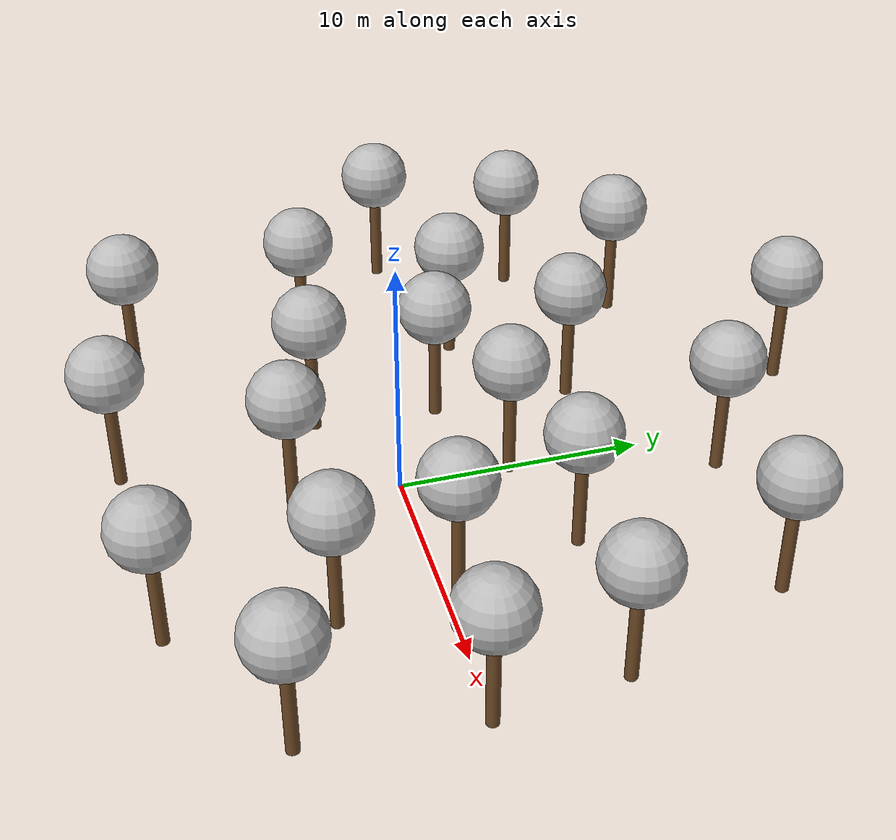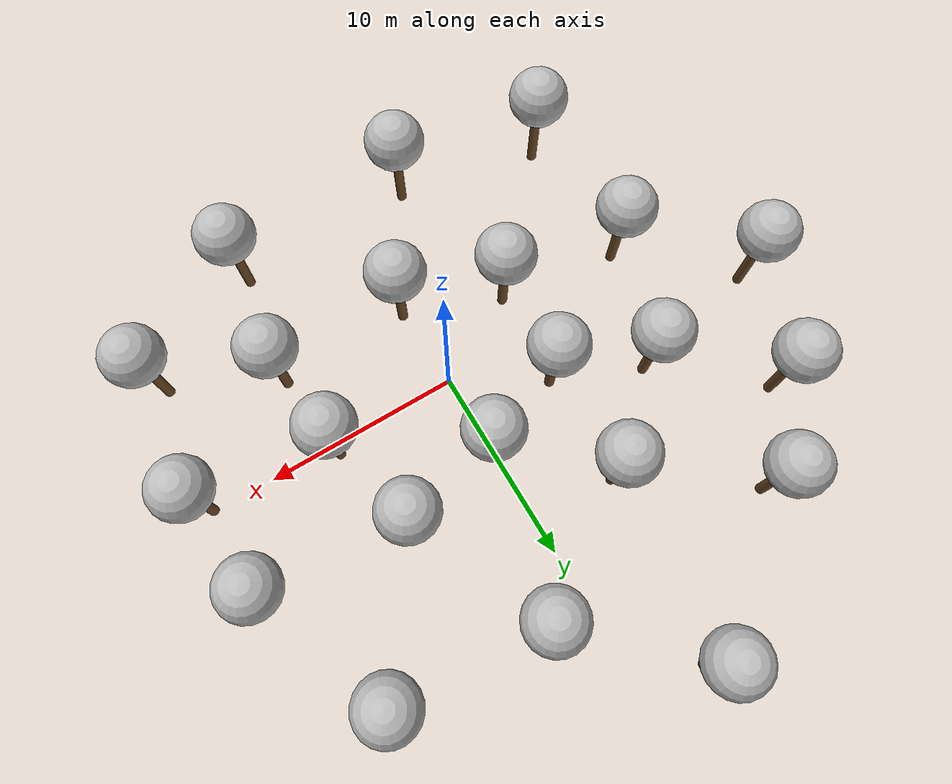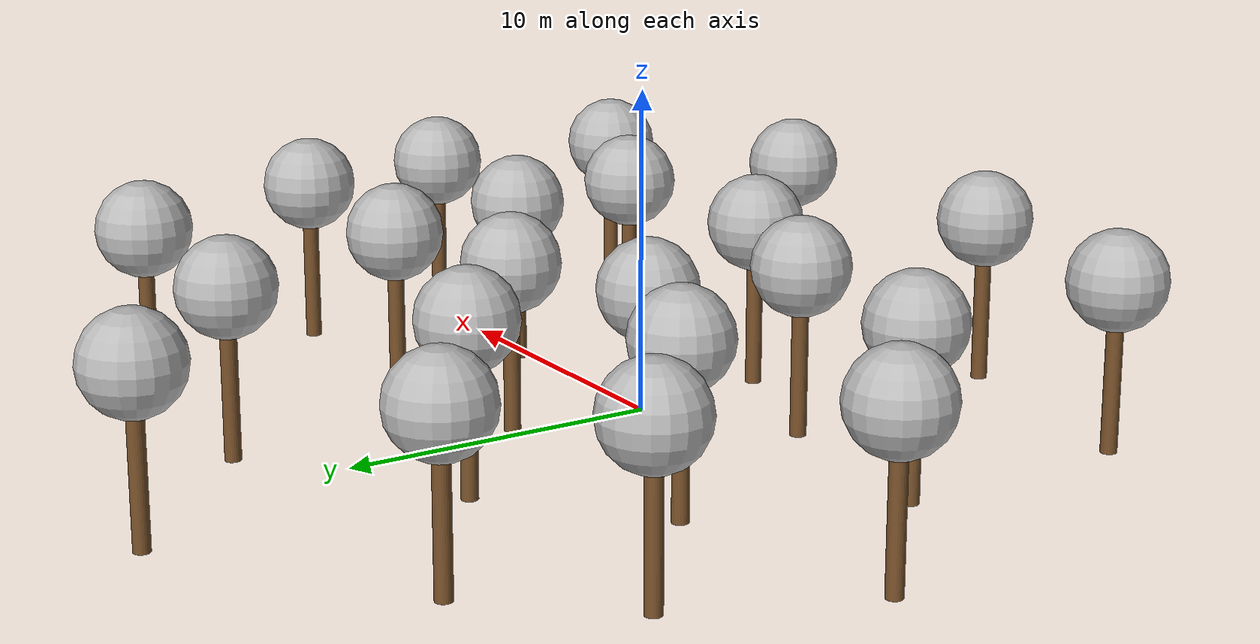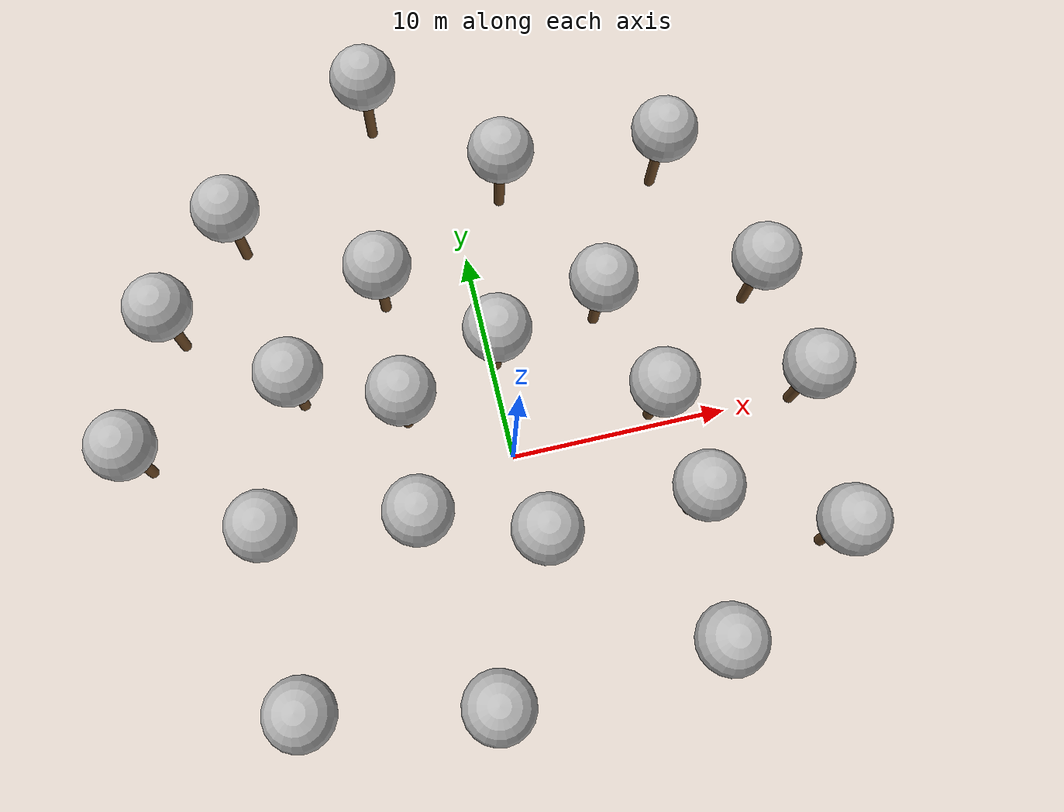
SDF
<sdf version="1.7">
 <world name="default">
  <spherical_coordinates>
   <surface_model>EARTH_WGS84</surface_model>
   <latitude_deg>47.3977</latitude_deg>
   <longitude_deg>8.54559</longitude_deg>
   <elevation>0</elevation>
   <heading_deg>0</heading_deg>
  </spherical_coordinates>
  <physics name="default_physics" default="0" type="ode">
   <ode>
    <solver>
     <type>quick</type>
     <iters>10</iters>
     <sor>1.3</sor>
     <use_dynamic_moi_rescaling>0</use_dynamic_moi_rescaling>
    </solver>
    <constraints>
     <cfm>0</cfm>
     <erp>0.2</erp>
     <contact_max_correcting_vel>1000</contact_max_correcting_vel>
     <contact_surface_layer>0.001</contact_surface_layer>
    </constraints>
   </ode>
   <max_step_size>0.004</max_step_size>
   <real_time_factor>1</real_time_factor>
   <real_time_update_rate>250</real_time_update_rate>
  </physics>
  <scene><shadows>0</shadows><ambient>0.4 0.4 0.4 1</ambient><background>0.7 0.7 0.7 1</background></scene>
  <light name="sun" type="directional">
   <pose>0 0 1000 0.4 0.2 0</pose>
   <diffuse>1 1 1 1</diffuse>
   <specular>0.6 0.6 0.6 1</specular>
   <direction>0.1 0.1 -0.9</direction>
   <attenuation>
    <range>20</range>
    <constant>0.5</constant>
    <linear>0.01</linear>
    <quadratic>0.001</quadratic>
   </attenuation>
   <spot><inner_angle>0</inner_angle><outer_angle>0</outer_angle><falloff>0</falloff></spot>
  </light>
  <gravity>0 0 -9.8066</gravity>
  <magnetic_field>6e-06 2.3e-05 -4.2e-05</magnetic_field>
  <atmosphere type="adiabatic"/>
  <model name="tree_simple">
   <static>1</static>
   <link name="link">
    <pose>0 0 0.1 0 -0 0</pose>
    <inertial>
     <mass>666</mass>
     <inertia>
      <ixx>0.0861167</ixx>
      <ixy>0</ixy>
      <ixz>0</ixz>
      <iyy>0.0861167</iyy>
      <iyz>0</iyz>
      <izz>0.0861167</izz>
     </inertia>
    </inertial>
    <collision name="collision_trunk">
     <pose>0 0 2 0 -0 0</pose>
     <geometry><cylinder><radius>0.25</radius><length>4</length></cylinder></geometry>
     <surface>
      <contact>
       <poissons_ratio>0.347</poissons_ratio>
       <elastic_modulus>8.8e+09</elastic_modulus>
       <ode><kp>100000</kp><kd>100</kd><max_vel>100</max_vel><min_depth>0.001</min_depth></ode>
      </contact>
      <friction>
       <torsional>
        <coefficient>1</coefficient>
        <use_patch_radius>0</use_patch_radius>
        <surface_radius>0.01</surface_radius>
       </torsional>
      </friction>
     </surface>
    </collision>
    <collision name="collision_treetop">
     <pose>0 0 5.2 0 -0 0</pose>
     <geometry><sphere><radius>1.5</radius></sphere></geometry>
     <surface>
      <contact>
       <poissons_ratio>0.347</poissons_ratio>
       <elastic_modulus>8.8e+09</elastic_modulus>
       <ode><kp>100000</kp><kd>100</kd><max_vel>100</max_vel><min_depth>0.001</min_depth></ode>
      </contact>
      <friction>
       <torsional>
        <coefficient>1</coefficient>
        <use_patch_radius>0</use_patch_radius>
        <surface_radius>0.01</surface_radius>
       </torsional>
      </friction>
     </surface>
    </collision>
    <visual name="trunk">
     <pose>0 0 2 0 -0 0</pose>
     <geometry><cylinder><radius>0.25</radius><length>4</length></cylinder></geometry>
     <material>
      <script>
       <uri>model://tree_simple/scripts</uri>
       <uri>model://tree_simple/materials/textures</uri>
       <name>TreeSimple/Trunk</name>
      </script>
     </material>
    </visual>
    <visual name="treetop">
     <pose>0 0 5.2 0 -0 0</pose>
     <geometry><sphere><radius>1.5</radius></sphere></geometry>
     <material>
      <script>
       <uri>model://tree_simple/scripts</uri>
       <uri>model://tree_simple/materials/textures</uri>
       <name>TreeSimple/Treetop</name>
      </script>
     </material>
    </visual>
   </link>
   <pose>-4.70426 -2.50744 0 0 -0 0</pose>
  </model>
  <model name="tree_simple_0">
   <static>1</static>
   <link name="link">
    <pose>0 0 0.1 0 -0 0</pose>
    <inertial>
     <mass>666</mass>
     <inertia>
      <ixx>0.0861167</ixx>
      <ixy>0</ixy>
      <ixz>0</ixz>
      <iyy>0.0861167</iyy>
      <iyz>0</iyz>
      <izz>0.0861167</izz>
     </inertia>
    </inertial>
    <collision name="collision_trunk">
     <pose>0 0 2 0 -0 0</pose>
     <geometry><cylinder><radius>0.25</radius><length>4</length></cylinder></geometry>
     <surface>
      <contact>
       <poissons_ratio>0.347</poissons_ratio>
       <elastic_modulus>8.8e+09</elastic_modulus>
       <ode><kp>100000</kp><kd>100</kd><max_vel>100</max_vel><min_depth>0.001</min_depth></ode>
      </contact>
      <friction>
       <torsional>
        <coefficient>1</coefficient>
        <use_patch_radius>0</use_patch_radius>
        <surface_radius>0.01</surface_radius>
       </torsional>
      </friction>
     </surface>
    </collision>
    <collision name="collision_treetop">
     <pose>0 0 5.2 0 -0 0</pose>
     <geometry><sphere><radius>1.5</radius></sphere></geometry>
     <surface>
      <contact>
       <poissons_ratio>0.347</poissons_ratio>
       <elastic_modulus>8.8e+09</elastic_modulus>
       <ode><kp>100000</kp><kd>100</kd><max_vel>100</max_vel><min_depth>0.001</min_depth></ode>
      </contact>
      <friction>
       <torsional>
        <coefficient>1</coefficient>
        <use_patch_radius>0</use_patch_radius>
        <surface_radius>0.01</surface_radius>
       </torsional>
      </friction>
     </surface>
    </collision>
    <visual name="trunk">
     <pose>0 0 2 0 -0 0</pose>
     <geometry><cylinder><radius>0.25</radius><length>4</length></cylinder></geometry>
     <material>
      <script>
       <uri>model://tree_simple/scripts</uri>
       <uri>model://tree_simple/materials/textures</uri>
       <name>TreeSimple/Trunk</name>
      </script>
     </material>
    </visual>
    <visual name="treetop">
     <pose>0 0 5.2 0 -0 0</pose>
     <geometry><sphere><radius>1.5</radius></sphere></geometry>
     <material>
      <script>
       <uri>model://tree_simple/scripts</uri>
       <uri>model://tree_simple/materials/textures</uri>
       <name>TreeSimple/Treetop</name>
      </script>
     </material>
    </visual>
   </link>
   <pose>0.249496 -4.3834 0 0 -0 0</pose>
  </model>
  <model name="tree_simple_1">
   <static>1</static>
   <link name="link">
    <pose>0 0 0.1 0 -0 0</pose>
    <inertial>
     <mass>666</mass>
     <inertia>
      <ixx>0.0861167</ixx>
      <ixy>0</ixy>
      <ixz>0</ixz>
      <iyy>0.0861167</iyy>
      <iyz>0</iyz>
      <izz>0.0861167</izz>
     </inertia>
    </inertial>
    <collision name="collision_trunk">
     <pose>0 0 2 0 -0 0</pose>
     <geometry><cylinder><radius>0.25</radius><length>4</length></cylinder></geometry>
     <surface>
      <contact>
       <poissons_ratio>0.347</poissons_ratio>
       <elastic_modulus>8.8e+09</elastic_modulus>
       <ode><kp>100000</kp><kd>100</kd><max_vel>100</max_vel><min_depth>0.001</min_depth></ode>
      </contact>
      <friction>
       <torsional>
        <coefficient>1</coefficient>
        <use_patch_radius>0</use_patch_radius>
        <surface_radius>0.01</surface_radius>
       </torsional>
      </friction>
     </surface>
    </collision>
    <collision name="collision_treetop">
     <pose>0 0 5.2 0 -0 0</pose>
     <geometry><sphere><radius>1.5</radius></sphere></geometry>
     <surface>
      <contact>
       <poissons_ratio>0.347</poissons_ratio>
       <elastic_modulus>8.8e+09</elastic_modulus>
       <ode><kp>100000</kp><kd>100</kd><max_vel>100</max_vel><min_depth>0.001</min_depth></ode>
      </contact>
      <friction>
       <torsional>
        <coefficient>1</coefficient>
        <use_patch_radius>0</use_patch_radius>
        <surface_radius>0.01</surface_radius>
       </torsional>
      </friction>
     </surface>
    </collision>
    <visual name="trunk">
     <pose>0 0 2 0 -0 0</pose>
     <geometry><cylinder><radius>0.25</radius><length>4</length></cylinder></geometry>
     <material>
      <script>
       <uri>model://tree_simple/scripts</uri>
       <uri>model://tree_simple/materials/textures</uri>
       <name>TreeSimple/Trunk</name>
      </script>
     </material>
    </visual>
    <visual name="treetop">
     <pose>0 0 5.2 0 -0 0</pose>
     <geometry><sphere><radius>1.5</radius></sphere></geometry>
     <material>
      <script>
       <uri>model://tree_simple/scripts</uri>
       <uri>model://tree_simple/materials/textures</uri>
       <name>TreeSimple/Treetop</name>
      </script>
     </material>
    </visual>
   </link>
   <pose>6.52123 0.547415 0 0 -0 0</pose>
  </model>
  <model name="tree_simple_2">
   <static>1</static>
   <link name="link">
    <pose>0 0 0.1 0 -0 0</pose>
    <inertial>
     <mass>666</mass>
     <inertia>
      <ixx>0.0861167</ixx>
      <ixy>0</ixy>
      <ixz>0</ixz>
      <iyy>0.0861167</iyy>
      <iyz>0</iyz>
      <izz>0.0861167</izz>
     </inertia>
    </inertial>
    <collision name="collision_trunk">
     <pose>0 0 2 0 -0 0</pose>
     <geometry><cylinder><radius>0.25</radius><length>4</length></cylinder></geometry>
     <surface>
      <contact>
       <poissons_ratio>0.347</poissons_ratio>
       <elastic_modulus>8.8e+09</elastic_modulus>
       <ode><kp>100000</kp><kd>100</kd><max_vel>100</max_vel><min_depth>0.001</min_depth></ode>
      </contact>
      <friction>
       <torsional>
        <coefficient>1</coefficient>
        <use_patch_radius>0</use_patch_radius>
        <surface_radius>0.01</surface_radius>
       </torsional>
      </friction>
     </surface>
    </collision>
    <collision name="collision_treetop">
     <pose>0 0 5.2 0 -0 0</pose>
     <geometry><sphere><radius>1.5</radius></sphere></geometry>
     <surface>
      <contact>
       <poissons_ratio>0.347</poissons_ratio>
       <elastic_modulus>8.8e+09</elastic_modulus>
       <ode><kp>100000</kp><kd>100</kd><max_vel>100</max_vel><min_depth>0.001</min_depth></ode>
      </contact>
      <friction>
       <torsional>
        <coefficient>1</coefficient>
        <use_patch_radius>0</use_patch_radius>
        <surface_radius>0.01</surface_radius>
       </torsional>
      </friction>
     </surface>
    </collision>
    <visual name="trunk">
     <pose>0 0 2 0 -0 0</pose>
     <geometry><cylinder><radius>0.25</radius><length>4</length></cylinder></geometry>
     <material>
      <script>
       <uri>model://tree_simple/scripts</uri>
       <uri>model://tree_simple/materials/textures</uri>
       <name>TreeSimple/Trunk</name>
      </script>
     </material>
    </visual>
    <visual name="treetop">
     <pose>0 0 5.2 0 -0 0</pose>
     <geometry><sphere><radius>1.5</radius></sphere></geometry>
     <material>
      <script>
       <uri>model://tree_simple/scripts</uri>
       <uri>model://tree_simple/materials/textures</uri>
       <name>TreeSimple/Treetop</name>
      </script>
     </material>
    </visual>
   </link>
   <pose>-8.86186 4.47994 0 0 -0 0</pose>
  </model>
  <model name="tree_simple_3">
   <static>1</static>
   <link name="link">
    <pose>0 0 0.1 0 -0 0</pose>
    <inertial>
     <mass>666</mass>
     <inertia>
      <ixx>0.0861167</ixx>
      <ixy>0</ixy>
      <ixz>0</ixz>
      <iyy>0.0861167</iyy>
      <iyz>0</iyz>
      <izz>0.0861167</izz>
     </inertia>
    </inertial>
    <collision name="collision_trunk">
     <pose>0 0 2 0 -0 0</pose>
     <geometry><cylinder><radius>0.25</radius><length>4</length></cylinder></geometry>
     <surface>
      <contact>
       <poissons_ratio>0.347</poissons_ratio>
       <elastic_modulus>8.8e+09</elastic_modulus>
       <ode><kp>100000</kp><kd>100</kd><max_vel>100</max_vel><min_depth>0.001</min_depth></ode>
      </contact>
      <friction>
       <torsional>
        <coefficient>1</coefficient>
        <use_patch_radius>0</use_patch_radius>
        <surface_radius>0.01</surface_radius>
       </torsional>
      </friction>
     </surface>
    </collision>
    <collision name="collision_treetop">
     <pose>0 0 5.2 0 -0 0</pose>
     <geometry><sphere><radius>1.5</radius></sphere></geometry>
     <surface>
      <contact>
       <poissons_ratio>0.347</poissons_ratio>
       <elastic_modulus>8.8e+09</elastic_modulus>
       <ode><kp>100000</kp><kd>100</kd><max_vel>100</max_vel><min_depth>0.001</min_depth></ode>
      </contact>
      <friction>
       <torsional>
        <coefficient>1</coefficient>
        <use_patch_radius>0</use_patch_radius>
        <surface_radius>0.01</surface_radius>
       </torsional>
      </friction>
     </surface>
    </collision>
    <visual name="trunk">
     <pose>0 0 2 0 -0 0</pose>
     <geometry><cylinder><radius>0.25</radius><length>4</length></cylinder></geometry>
     <material>
      <script>
       <uri>model://tree_simple/scripts</uri>
       <uri>model://tree_simple/materials/textures</uri>
       <name>TreeSimple/Trunk</name>
      </script>
     </material>
    </visual>
    <visual name="treetop">
     <pose>0 0 5.2 0 -0 0</pose>
     <geometry><sphere><radius>1.5</radius></sphere></geometry>
     <material>
      <script>
       <uri>model://tree_simple/scripts</uri>
       <uri>model://tree_simple/materials/textures</uri>
       <name>TreeSimple/Treetop</name>
      </script>
     </material>
    </visual>
   </link>
   <pose>0.196678 4.45928 0 0 -0 0</pose>
  </model>
  <model name="tree_simple_4">
   <static>1</static>
   <link name="link">
    <pose>0 0 0.1 0 -0 0</pose>
    <inertial>
     <mass>666</mass>
     <inertia>
      <ixx>0.0861167</ixx>
      <ixy>0</ixy>
      <ixz>0</ixz>
      <iyy>0.0861167</iyy>
      <iyz>0</iyz>
      <izz>0.0861167</izz>
     </inertia>
    </inertial>
    <collision name="collision_trunk">
     <pose>0 0 2 0 -0 0</pose>
     <geometry><cylinder><radius>0.25</radius><length>4</length></cylinder></geometry>
     <surface>
      <contact>
       <poissons_ratio>0.347</poissons_ratio>
       <elastic_modulus>8.8e+09</elastic_modulus>
       <ode><kp>100000</kp><kd>100</kd><max_vel>100</max_vel><min_depth>0.001</min_depth></ode>
      </contact>
      <friction>
       <torsional>
        <coefficient>1</coefficient>
        <use_patch_radius>0</use_patch_radius>
        <surface_radius>0.01</surface_radius>
       </torsional>
      </friction>
     </surface>
    </collision>
    <collision name="collision_treetop">
     <pose>0 0 5.2 0 -0 0</pose>
     <geometry><sphere><radius>1.5</radius></sphere></geometry>
     <surface>
      <contact>
       <poissons_ratio>0.347</poissons_ratio>
       <elastic_modulus>8.8e+09</elastic_modulus>
       <ode><kp>100000</kp><kd>100</kd><max_vel>100</max_vel><min_depth>0.001</min_depth></ode>
      </contact>
      <friction>
       <torsional>
        <coefficient>1</coefficient>
        <use_patch_radius>0</use_patch_radius>
        <surface_radius>0.01</surface_radius>
       </torsional>
      </friction>
     </surface>
    </collision>
    <visual name="trunk">
     <pose>0 0 2 0 -0 0</pose>
     <geometry><cylinder><radius>0.25</radius><length>4</length></cylinder></geometry>
     <material>
      <script>
       <uri>model://tree_simple/scripts</uri>
       <uri>model://tree_simple/materials/textures</uri>
       <name>TreeSimple/Trunk</name>
      </script>
     </material>
    </visual>
    <visual name="treetop">
     <pose>0 0 5.2 0 -0 0</pose>
     <geometry><sphere><radius>1.5</radius></sphere></geometry>
     <material>
      <script>
       <uri>model://tree_simple/scripts</uri>
       <uri>model://tree_simple/materials/textures</uri>
       <name>TreeSimple/Treetop</name>
      </script>
     </material>
    </visual>
   </link>
   <pose>5.20323 5.67268 0 0 -0 0</pose>
  </model>
  <model name="tree_simple_5">
   <static>1</static>
   <link name="link">
    <pose>0 0 0.1 0 -0 0</pose>
    <inertial>
     <mass>666</mass>
     <inertia>
      <ixx>0.0861167</ixx>
      <ixy>0</ixy>
      <ixz>0</ixz>
      <iyy>0.0861167</iyy>
      <iyz>0</iyz>
      <izz>0.0861167</izz>
     </inertia>
    </inertial>
    <collision name="collision_trunk">
     <pose>0 0 2 0 -0 0</pose>
     <geometry><cylinder><radius>0.25</radius><length>4</length></cylinder></geometry>
     <surface>
      <contact>
       <poissons_ratio>0.347</poissons_ratio>
       <elastic_modulus>8.8e+09</elastic_modulus>
       <ode><kp>100000</kp><kd>100</kd><max_vel>100</max_vel><min_depth>0.001</min_depth></ode>
      </contact>
      <friction>
       <torsional>
        <coefficient>1</coefficient>
        <use_patch_radius>0</use_patch_radius>
        <surface_radius>0.01</surface_radius>
       </torsional>
      </friction>
     </surface>
    </collision>
    <collision name="collision_treetop">
     <pose>0 0 5.2 0 -0 0</pose>
     <geometry><sphere><radius>1.5</radius></sphere></geometry>
     <surface>
      <contact>
       <poissons_ratio>0.347</poissons_ratio>
       <elastic_modulus>8.8e+09</elastic_modulus>
       <ode><kp>100000</kp><kd>100</kd><max_vel>100</max_vel><min_depth>0.001</min_depth></ode>
      </contact>
      <friction>
       <torsional>
        <coefficient>1</coefficient>
        <use_patch_radius>0</use_patch_radius>
        <surface_radius>0.01</surface_radius>
       </torsional>
      </friction>
     </surface>
    </collision>
    <visual name="trunk">
     <pose>0 0 2 0 -0 0</pose>
     <geometry><cylinder><radius>0.25</radius><length>4</length></cylinder></geometry>
     <material>
      <script>
       <uri>model://tree_simple/scripts</uri>
       <uri>model://tree_simple/materials/textures</uri>
       <name>TreeSimple/Trunk</name>
      </script>
     </material>
    </visual>
    <visual name="treetop">
     <pose>0 0 5.2 0 -0 0</pose>
     <geometry><sphere><radius>1.5</radius></sphere></geometry>
     <material>
      <script>
       <uri>model://tree_simple/scripts</uri>
       <uri>model://tree_simple/materials/textures</uri>
       <name>TreeSimple/Treetop</name>
      </script>
     </material>
    </visual>
   </link>
   <pose>-4.24876 8.41603 0 0 -0 0</pose>
  </model>
  <model name="tree_simple_6">
   <static>1</static>
   <link name="link">
    <pose>0 0 0.1 0 -0 0</pose>
    <inertial>
     <mass>666</mass>
     <inertia>
      <ixx>0.0861167</ixx>
      <ixy>0</ixy>
      <ixz>0</ixz>
      <iyy>0.0861167</iyy>
      <iyz>0</iyz>
      <izz>0.0861167</izz>
     </inertia>
    </inertial>
    <collision name="collision_trunk">
     <pose>0 0 2 0 -0 0</pose>
     <geometry><cylinder><radius>0.25</radius><length>4</length></cylinder></geometry>
     <surface>
      <contact>
       <poissons_ratio>0.347</poissons_ratio>
       <elastic_modulus>8.8e+09</elastic_modulus>
       <ode><kp>100000</kp><kd>100</kd><max_vel>100</max_vel><min_depth>0.001</min_depth></ode>
      </contact>
      <friction>
       <torsional>
        <coefficient>1</coefficient>
        <use_patch_radius>0</use_patch_radius>
        <surface_radius>0.01</surface_radius>
       </torsional>
      </friction>
     </surface>
    </collision>
    <collision name="collision_treetop">
     <pose>0 0 5.2 0 -0 0</pose>
     <geometry><sphere><radius>1.5</radius></sphere></geometry>
     <surface>
      <contact>
       <poissons_ratio>0.347</poissons_ratio>
       <elastic_modulus>8.8e+09</elastic_modulus>
       <ode><kp>100000</kp><kd>100</kd><max_vel>100</max_vel><min_depth>0.001</min_depth></ode>
      </contact>
      <friction>
       <torsional>
        <coefficient>1</coefficient>
        <use_patch_radius>0</use_patch_radius>
        <surface_radius>0.01</surface_radius>
       </torsional>
      </friction>
     </surface>
    </collision>
    <visual name="trunk">
     <pose>0 0 2 0 -0 0</pose>
     <geometry><cylinder><radius>0.25</radius><length>4</length></cylinder></geometry>
     <material>
      <script>
       <uri>model://tree_simple/scripts</uri>
       <uri>model://tree_simple/materials/textures</uri>
       <name>TreeSimple/Trunk</name>
      </script>
     </material>
    </visual>
    <visual name="treetop">
     <pose>0 0 5.2 0 -0 0</pose>
     <geometry><sphere><radius>1.5</radius></sphere></geometry>
     <material>
      <script>
       <uri>model://tree_simple/scripts</uri>
       <uri>model://tree_simple/materials/textures</uri>
       <name>TreeSimple/Treetop</name>
      </script>
     </material>
    </visual>
   </link>
   <pose>7.1119 -4.11392 0 0 -0 0</pose>
  </model>
  <model name="tree_simple_7">
   <static>1</static>
   <link name="link">
    <pose>0 0 0.1 0 -0 0</pose>
    <inertial>
     <mass>666</mass>
     <inertia>
      <ixx>0.0861167</ixx>
      <ixy>0</ixy>
      <ixz>0</ixz>
      <iyy>0.0861167</iyy>
      <iyz>0</iyz>
      <izz>0.0861167</izz>
     </inertia>
    </inertial>
    <collision name="collision_trunk">
     <pose>0 0 2 0 -0 0</pose>
     <geometry><cylinder><radius>0.25</radius><length>4</length></cylinder></geometry>
     <surface>
      <contact>
       <poissons_ratio>0.347</poissons_ratio>
       <elastic_modulus>8.8e+09</elastic_modulus>
       <ode><kp>100000</kp><kd>100</kd><max_vel>100</max_vel><min_depth>0.001</min_depth></ode>
      </contact>
      <friction>
       <torsional>
        <coefficient>1</coefficient>
        <use_patch_radius>0</use_patch_radius>
        <surface_radius>0.01</surface_radius>
       </torsional>
      </friction>
     </surface>
    </collision>
    <collision name="collision_treetop">
     <pose>0 0 5.2 0 -0 0</pose>
     <geometry><sphere><radius>1.5</radius></sphere></geometry>
     <surface>
      <contact>
       <poissons_ratio>0.347</poissons_ratio>
       <elastic_modulus>8.8e+09</elastic_modulus>
       <ode><kp>100000</kp><kd>100</kd><max_vel>100</max_vel><min_depth>0.001</min_depth></ode>
      </contact>
      <friction>
       <torsional>
        <coefficient>1</coefficient>
        <use_patch_radius>0</use_patch_radius>
        <surface_radius>0.01</surface_radius>
       </torsional>
      </friction>
     </surface>
    </collision>
    <visual name="trunk">
     <pose>0 0 2 0 -0 0</pose>
     <geometry><cylinder><radius>0.25</radius><length>4</length></cylinder></geometry>
     <material>
      <script>
       <uri>model://tree_simple/scripts</uri>
       <uri>model://tree_simple/materials/textures</uri>
       <name>TreeSimple/Trunk</name>
      </script>
     </material>
    </visual>
    <visual name="treetop">
     <pose>0 0 5.2 0 -0 0</pose>
     <geometry><sphere><radius>1.5</radius></sphere></geometry>
     <material>
      <script>
       <uri>model://tree_simple/scripts</uri>
       <uri>model://tree_simple/materials/textures</uri>
       <name>TreeSimple/Treetop</name>
      </script>
     </material>
    </visual>
   </link>
   <pose>-11.0519 -1.70317 0 0 -0 0</pose>
  </model>
  <model name="tree_simple_8">
   <static>1</static>
   <link name="link">
    <pose>0 0 0.1 0 -0 0</pose>
    <inertial>
     <mass>666</mass>
     <inertia>
      <ixx>0.0861167</ixx>
      <ixy>0</ixy>
      <ixz>0</ixz>
      <iyy>0.0861167</iyy>
      <iyz>0</iyz>
      <izz>0.0861167</izz>
     </inertia>
    </inertial>
    <collision name="collision_trunk">
     <pose>0 0 2 0 -0 0</pose>
     <geometry><cylinder><radius>0.25</radius><length>4</length></cylinder></geometry>
     <surface>
      <contact>
       <poissons_ratio>0.347</poissons_ratio>
       <elastic_modulus>8.8e+09</elastic_modulus>
       <ode><kp>100000</kp><kd>100</kd><max_vel>100</max_vel><min_depth>0.001</min_depth></ode>
      </contact>
      <friction>
       <torsional>
        <coefficient>1</coefficient>
        <use_patch_radius>0</use_patch_radius>
        <surface_radius>0.01</surface_radius>
       </torsional>
      </friction>
     </surface>
    </collision>
    <collision name="collision_treetop">
     <pose>0 0 5.2 0 -0 0</pose>
     <geometry><sphere><radius>1.5</radius></sphere></geometry>
     <surface>
      <contact>
       <poissons_ratio>0.347</poissons_ratio>
       <elastic_modulus>8.8e+09</elastic_modulus>
       <ode><kp>100000</kp><kd>100</kd><max_vel>100</max_vel><min_depth>0.001</min_depth></ode>
      </contact>
      <friction>
       <torsional>
        <coefficient>1</coefficient>
        <use_patch_radius>0</use_patch_radius>
        <surface_radius>0.01</surface_radius>
       </torsional>
      </friction>
     </surface>
    </collision>
    <visual name="trunk">
     <pose>0 0 2 0 -0 0</pose>
     <geometry><cylinder><radius>0.25</radius><length>4</length></cylinder></geometry>
     <material>
      <script>
       <uri>model://tree_simple/scripts</uri>
       <uri>model://tree_simple/materials/textures</uri>
       <name>TreeSimple/Trunk</name>
      </script>
     </material>
    </visual>
    <visual name="treetop">
     <pose>0 0 5.2 0 -0 0</pose>
     <geometry><sphere><radius>1.5</radius></sphere></geometry>
     <material>
      <script>
       <uri>model://tree_simple/scripts</uri>
       <uri>model://tree_simple/materials/textures</uri>
       <name>TreeSimple/Treetop</name>
      </script>
     </material>
    </visual>
   </link>
   <pose>-3.2128 -10.7297 0 0 -0 0</pose>
  </model>
  <model name="tree_simple_9">
   <static>1</static>
   <link name="link">
    <pose>0 0 0.1 0 -0 0</pose>
    <inertial>
     <mass>666</mass>
     <inertia>
      <ixx>0.0861167</ixx>
      <ixy>0</ixy>
      <ixz>0</ixz>
      <iyy>0.0861167</iyy>
      <iyz>0</iyz>
      <izz>0.0861167</izz>
     </inertia>
    </inertial>
    <collision name="collision_trunk">
     <pose>0 0 2 0 -0 0</pose>
     <geometry><cylinder><radius>0.25</radius><length>4</length></cylinder></geometry>
     <surface>
      <contact>
       <poissons_ratio>0.347</poissons_ratio>
       <elastic_modulus>8.8e+09</elastic_modulus>
       <ode><kp>100000</kp><kd>100</kd><max_vel>100</max_vel><min_depth>0.001</min_depth></ode>
      </contact>
      <friction>
       <torsional>
        <coefficient>1</coefficient>
        <use_patch_radius>0</use_patch_radius>
        <surface_radius>0.01</surface_radius>
       </torsional>
      </friction>
     </surface>
    </collision>
    <collision name="collision_treetop">
     <pose>0 0 5.2 0 -0 0</pose>
     <geometry><sphere><radius>1.5</radius></sphere></geometry>
     <surface>
      <contact>
       <poissons_ratio>0.347</poissons_ratio>
       <elastic_modulus>8.8e+09</elastic_modulus>
       <ode><kp>100000</kp><kd>100</kd><max_vel>100</max_vel><min_depth>0.001</min_depth></ode>
      </contact>
      <friction>
       <torsional>
        <coefficient>1</coefficient>
        <use_patch_radius>0</use_patch_radius>
        <surface_radius>0.01</surface_radius>
       </torsional>
      </friction>
     </surface>
    </collision>
    <visual name="trunk">
     <pose>0 0 2 0 -0 0</pose>
     <geometry><cylinder><radius>0.25</radius><length>4</length></cylinder></geometry>
     <material>
      <script>
       <uri>model://tree_simple/scripts</uri>
       <uri>model://tree_simple/materials/textures</uri>
       <name>TreeSimple/Trunk</name>
      </script>
     </material>
    </visual>
    <visual name="treetop">
     <pose>0 0 5.2 0 -0 0</pose>
     <geometry><sphere><radius>1.5</radius></sphere></geometry>
     <material>
      <script>
       <uri>model://tree_simple/scripts</uri>
       <uri>model://tree_simple/materials/textures</uri>
       <name>TreeSimple/Treetop</name>
      </script>
     </material>
    </visual>
   </link>
   <pose>2.2317 12.6257 0 0 -0 0</pose>
  </model>
  <model name="tree_simple_10">
   <static>1</static>
   <link name="link">
    <pose>0 0 0.1 0 -0 0</pose>
    <inertial>
     <mass>666</mass>
     <inertia>
      <ixx>0.0861167</ixx>
      <ixy>0</ixy>
      <ixz>0</ixz>
      <iyy>0.0861167</iyy>
      <iyz>0</iyz>
      <izz>0.0861167</izz>
     </inertia>
    </inertial>
    <collision name="collision_trunk">
     <pose>0 0 2 0 -0 0</pose>
     <geometry><cylinder><radius>0.25</radius><length>4</length></cylinder></geometry>
     <surface>
      <contact>
       <poissons_ratio>0.347</poissons_ratio>
       <elastic_modulus>8.8e+09</elastic_modulus>
       <ode><kp>100000</kp><kd>100</kd><max_vel>100</max_vel><min_depth>0.001</min_depth></ode>
      </contact>
      <friction>
       <torsional>
        <coefficient>1</coefficient>
        <use_patch_radius>0</use_patch_radius>
        <surface_radius>0.01</surface_radius>
       </torsional>
      </friction>
     </surface>
    </collision>
    <collision name="collision_treetop">
     <pose>0 0 5.2 0 -0 0</pose>
     <geometry><sphere><radius>1.5</radius></sphere></geometry>
     <surface>
      <contact>
       <poissons_ratio>0.347</poissons_ratio>
       <elastic_modulus>8.8e+09</elastic_modulus>
       <ode><kp>100000</kp><kd>100</kd><max_vel>100</max_vel><min_depth>0.001</min_depth></ode>
      </contact>
      <friction>
       <torsional>
        <coefficient>1</coefficient>
        <use_patch_radius>0</use_patch_radius>
        <surface_radius>0.01</surface_radius>
       </torsional>
      </friction>
     </surface>
    </collision>
    <visual name="trunk">
     <pose>0 0 2 0 -0 0</pose>
     <geometry><cylinder><radius>0.25</radius><length>4</length></cylinder></geometry>
     <material>
      <script>
       <uri>model://tree_simple/scripts</uri>
       <uri>model://tree_simple/materials/textures</uri>
       <name>TreeSimple/Trunk</name>
      </script>
     </material>
    </visual>
    <visual name="treetop">
     <pose>0 0 5.2 0 -0 0</pose>
     <geometry><sphere><radius>1.5</radius></sphere></geometry>
     <material>
      <script>
       <uri>model://tree_simple/scripts</uri>
       <uri>model://tree_simple/materials/textures</uri>
       <name>TreeSimple/Treetop</name>
      </script>
     </material>
    </visual>
   </link>
   <pose>12.3629 5.10301 0 0 -0 0</pose>
  </model>
  <model name="tree_simple_11">
   <static>1</static>
   <link name="link">
    <pose>0 0 0.1 0 -0 0</pose>
    <inertial>
     <mass>666</mass>
     <inertia>
      <ixx>0.0861167</ixx>
      <ixy>0</ixy>
      <ixz>0</ixz>
      <iyy>0.0861167</iyy>
      <iyz>0</iyz>
      <izz>0.0861167</izz>
     </inertia>
    </inertial>
    <collision name="collision_trunk">
     <pose>0 0 2 0 -0 0</pose>
     <geometry><cylinder><radius>0.25</radius><length>4</length></cylinder></geometry>
     <surface>
      <contact>
       <poissons_ratio>0.347</poissons_ratio>
       <elastic_modulus>8.8e+09</elastic_modulus>
       <ode><kp>100000</kp><kd>100</kd><max_vel>100</max_vel><min_depth>0.001</min_depth></ode>
      </contact>
      <friction>
       <torsional>
        <coefficient>1</coefficient>
        <use_patch_radius>0</use_patch_radius>
        <surface_radius>0.01</surface_radius>
       </torsional>
      </friction>
     </surface>
    </collision>
    <collision name="collision_treetop">
     <pose>0 0 5.2 0 -0 0</pose>
     <geometry><sphere><radius>1.5</radius></sphere></geometry>
     <surface>
      <contact>
       <poissons_ratio>0.347</poissons_ratio>
       <elastic_modulus>8.8e+09</elastic_modulus>
       <ode><kp>100000</kp><kd>100</kd><max_vel>100</max_vel><min_depth>0.001</min_depth></ode>
      </contact>
      <friction>
       <torsional>
        <coefficient>1</coefficient>
        <use_patch_radius>0</use_patch_radius>
        <surface_radius>0.01</surface_radius>
       </torsional>
      </friction>
     </surface>
    </collision>
    <visual name="trunk">
     <pose>0 0 2 0 -0 0</pose>
     <geometry><cylinder><radius>0.25</radius><length>4</length></cylinder></geometry>
     <material>
      <script>
       <uri>model://tree_simple/scripts</uri>
       <uri>model://tree_simple/materials/textures</uri>
       <name>TreeSimple/Trunk</name>
      </script>
     </material>
    </visual>
    <visual name="treetop">
     <pose>0 0 5.2 0 -0 0</pose>
     <geometry><sphere><radius>1.5</radius></sphere></geometry>
     <material>
      <script>
       <uri>model://tree_simple/scripts</uri>
       <uri>model://tree_simple/materials/textures</uri>
       <name>TreeSimple/Treetop</name>
      </script>
     </material>
    </visual>
   </link>
   <pose>9.68344 12.0392 0 0 -0 0</pose>
  </model>
  <model name="tree_simple_12">
   <static>1</static>
   <link name="link">
    <pose>0 0 0.1 0 -0 0</pose>
    <inertial>
     <mass>666</mass>
     <inertia>
      <ixx>0.0861167</ixx>
      <ixy>0</ixy>
      <ixz>0</ixz>
      <iyy>0.0861167</iyy>
      <iyz>0</iyz>
      <izz>0.0861167</izz>
     </inertia>
    </inertial>
    <collision name="collision_trunk">
     <pose>0 0 2 0 -0 0</pose>
     <geometry><cylinder><radius>0.25</radius><length>4</length></cylinder></geometry>
     <surface>
      <contact>
       <poissons_ratio>0.347</poissons_ratio>
       <elastic_modulus>8.8e+09</elastic_modulus>
       <ode><kp>100000</kp><kd>100</kd><max_vel>100</max_vel><min_depth>0.001</min_depth></ode>
      </contact>
      <friction>
       <torsional>
        <coefficient>1</coefficient>
        <use_patch_radius>0</use_patch_radius>
        <surface_radius>0.01</surface_radius>
       </torsional>
      </friction>
     </surface>
    </collision>
    <collision name="collision_treetop">
     <pose>0 0 5.2 0 -0 0</pose>
     <geometry><sphere><radius>1.5</radius></sphere></geometry>
     <surface>
      <contact>
       <poissons_ratio>0.347</poissons_ratio>
       <elastic_modulus>8.8e+09</elastic_modulus>
       <ode><kp>100000</kp><kd>100</kd><max_vel>100</max_vel><min_depth>0.001</min_depth></ode>
      </contact>
      <friction>
       <torsional>
        <coefficient>1</coefficient>
        <use_patch_radius>0</use_patch_radius>
        <surface_radius>0.01</surface_radius>
       </torsional>
      </friction>
     </surface>
    </collision>
    <visual name="trunk">
     <pose>0 0 2 0 -0 0</pose>
     <geometry><cylinder><radius>0.25</radius><length>4</length></cylinder></geometry>
     <material>
      <script>
       <uri>model://tree_simple/scripts</uri>
       <uri>model://tree_simple/materials/textures</uri>
       <name>TreeSimple/Trunk</name>
      </script>
     </material>
    </visual>
    <visual name="treetop">
     <pose>0 0 5.2 0 -0 0</pose>
     <geometry><sphere><radius>1.5</radius></sphere></geometry>
     <material>
      <script>
       <uri>model://tree_simple/scripts</uri>
       <uri>model://tree_simple/materials/textures</uri>
       <name>TreeSimple/Treetop</name>
      </script>
     </material>
    </visual>
   </link>
   <pose>6.28864 -10.2427 0 0 -0 0</pose>
  </model>
  <model name="tree_simple_13">
   <static>1</static>
   <link name="link">
    <pose>0 0 0.1 0 -0 0</pose>
    <inertial>
     <mass>666</mass>
     <inertia>
      <ixx>0.0861167</ixx>
      <ixy>0</ixy>
      <ixz>0</ixz>
      <iyy>0.0861167</iyy>
      <iyz>0</iyz>
      <izz>0.0861167</izz>
     </inertia>
    </inertial>
    <collision name="collision_trunk">
     <pose>0 0 2 0 -0 0</pose>
     <geometry><cylinder><radius>0.25</radius><length>4</length></cylinder></geometry>
     <surface>
      <contact>
       <poissons_ratio>0.347</poissons_ratio>
       <elastic_modulus>8.8e+09</elastic_modulus>
       <ode><kp>100000</kp><kd>100</kd><max_vel>100</max_vel><min_depth>0.001</min_depth></ode>
      </contact>
      <friction>
       <torsional>
        <coefficient>1</coefficient>
        <use_patch_radius>0</use_patch_radius>
        <surface_radius>0.01</surface_radius>
       </torsional>
      </friction>
     </surface>
    </collision>
    <collision name="collision_treetop">
     <pose>0 0 5.2 0 -0 0</pose>
     <geometry><sphere><radius>1.5</radius></sphere></geometry>
     <surface>
      <contact>
       <poissons_ratio>0.347</poissons_ratio>
       <elastic_modulus>8.8e+09</elastic_modulus>
       <ode><kp>100000</kp><kd>100</kd><max_vel>100</max_vel><min_depth>0.001</min_depth></ode>
      </contact>
      <friction>
       <torsional>
        <coefficient>1</coefficient>
        <use_patch_radius>0</use_patch_radius>
        <surface_radius>0.01</surface_radius>
       </torsional>
      </friction>
     </surface>
    </collision>
    <visual name="trunk">
     <pose>0 0 2 0 -0 0</pose>
     <geometry><cylinder><radius>0.25</radius><length>4</length></cylinder></geometry>
     <material>
      <script>
       <uri>model://tree_simple/scripts</uri>
       <uri>model://tree_simple/materials/textures</uri>
       <name>TreeSimple/Trunk</name>
      </script>
     </material>
    </visual>
    <visual name="treetop">
     <pose>0 0 5.2 0 -0 0</pose>
     <geometry><sphere><radius>1.5</radius></sphere></geometry>
     <material>
      <script>
       <uri>model://tree_simple/scripts</uri>
       <uri>model://tree_simple/materials/textures</uri>
       <name>TreeSimple/Treetop</name>
      </script>
     </material>
    </visual>
   </link>
   <pose>-10.2542 12.5288 0 0 -0 0</pose>
  </model>
  <model name="tree_simple_14">
   <static>1</static>
   <link name="link">
    <pose>0 0 0.1 0 -0 0</pose>
    <inertial>
     <mass>666</mass>
     <inertia>
      <ixx>0.0861167</ixx>
      <ixy>0</ixy>
      <ixz>0</ixz>
      <iyy>0.0861167</iyy>
      <iyz>0</iyz>
      <izz>0.0861167</izz>
     </inertia>
    </inertial>
    <collision name="collision_trunk">
     <pose>0 0 2 0 -0 0</pose>
     <geometry><cylinder><radius>0.25</radius><length>4</length></cylinder></geometry>
     <surface>
      <contact>
       <poissons_ratio>0.347</poissons_ratio>
       <elastic_modulus>8.8e+09</elastic_modulus>
       <ode><kp>100000</kp><kd>100</kd><max_vel>100</max_vel><min_depth>0.001</min_depth></ode>
      </contact>
      <friction>
       <torsional>
        <coefficient>1</coefficient>
        <use_patch_radius>0</use_patch_radius>
        <surface_radius>0.01</surface_radius>
       </torsional>
      </friction>
     </surface>
    </collision>
    <collision name="collision_treetop">
     <pose>0 0 5.2 0 -0 0</pose>
     <geometry><sphere><radius>1.5</radius></sphere></geometry>
     <surface>
      <contact>
       <poissons_ratio>0.347</poissons_ratio>
       <elastic_modulus>8.8e+09</elastic_modulus>
       <ode><kp>100000</kp><kd>100</kd><max_vel>100</max_vel><min_depth>0.001</min_depth></ode>
      </contact>
      <friction>
       <torsional>
        <coefficient>1</coefficient>
        <use_patch_radius>0</use_patch_radius>
        <surface_radius>0.01</surface_radius>
       </torsional>
      </friction>
     </surface>
    </collision>
    <visual name="trunk">
     <pose>0 0 2 0 -0 0</pose>
     <geometry><cylinder><radius>0.25</radius><length>4</length></cylinder></geometry>
     <material>
      <script>
       <uri>model://tree_simple/scripts</uri>
       <uri>model://tree_simple/materials/textures</uri>
       <name>TreeSimple/Trunk</name>
      </script>
     </material>
    </visual>
    <visual name="treetop">
     <pose>0 0 5.2 0 -0 0</pose>
     <geometry><sphere><radius>1.5</radius></sphere></geometry>
     <material>
      <script>
       <uri>model://tree_simple/scripts</uri>
       <uri>model://tree_simple/materials/textures</uri>
       <name>TreeSimple/Treetop</name>
      </script>
     </material>
    </visual>
   </link>
   <pose>-3.0979 17.6365 0 0 -0 0</pose>
  </model>
  <model name="tree_simple_15">
   <static>1</static>
   <link name="link">
    <pose>0 0 0.1 0 -0 0</pose>
    <inertial>
     <mass>666</mass>
     <inertia>
      <ixx>0.0861167</ixx>
      <ixy>0</ixy>
      <ixz>0</ixz>
      <iyy>0.0861167</iyy>
      <iyz>0</iyz>
      <izz>0.0861167</izz>
     </inertia>
    </inertial>
    <collision name="collision_trunk">
     <pose>0 0 2 0 -0 0</pose>
     <geometry><cylinder><radius>0.25</radius><length>4</length></cylinder></geometry>
     <surface>
      <contact>
       <poissons_ratio>0.347</poissons_ratio>
       <elastic_modulus>8.8e+09</elastic_modulus>
       <ode><kp>100000</kp><kd>100</kd><max_vel>100</max_vel><min_depth>0.001</min_depth></ode>
      </contact>
      <friction>
       <torsional>
        <coefficient>1</coefficient>
        <use_patch_radius>0</use_patch_radius>
        <surface_radius>0.01</surface_radius>
       </torsional>
      </friction>
     </surface>
    </collision>
    <collision name="collision_treetop">
     <pose>0 0 5.2 0 -0 0</pose>
     <geometry><sphere><radius>1.5</radius></sphere></geometry>
     <surface>
      <contact>
       <poissons_ratio>0.347</poissons_ratio>
       <elastic_modulus>8.8e+09</elastic_modulus>
       <ode><kp>100000</kp><kd>100</kd><max_vel>100</max_vel><min_depth>0.001</min_depth></ode>
      </contact>
      <friction>
       <torsional>
        <coefficient>1</coefficient>
        <use_patch_radius>0</use_patch_radius>
        <surface_radius>0.01</surface_radius>
       </torsional>
      </friction>
     </surface>
    </collision>
    <visual name="trunk">
     <pose>0 0 2 0 -0 0</pose>
     <geometry><cylinder><radius>0.25</radius><length>4</length></cylinder></geometry>
     <material>
      <script>
       <uri>model://tree_simple/scripts</uri>
       <uri>model://tree_simple/materials/textures</uri>
       <name>TreeSimple/Trunk</name>
      </script>
     </material>
    </visual>
    <visual name="treetop">
     <pose>0 0 5.2 0 -0 0</pose>
     <geometry><sphere><radius>1.5</radius></sphere></geometry>
     <material>
      <script>
       <uri>model://tree_simple/scripts</uri>
       <uri>model://tree_simple/materials/textures</uri>
       <name>TreeSimple/Treetop</name>
      </script>
     </material>
    </visual>
   </link>
   <pose>-4.37706 2.61954 0 0 -0 0</pose>
  </model>
  <model name="tree_simple_16">
   <static>1</static>
   <link name="link">
    <pose>0 0 0.1 0 -0 0</pose>
    <inertial>
     <mass>666</mass>
     <inertia>
      <ixx>0.0861167</ixx>
      <ixy>0</ixy>
      <ixz>0</ixz>
      <iyy>0.0861167</iyy>
      <iyz>0</iyz>
      <izz>0.0861167</izz>
     </inertia>
    </inertial>
    <collision name="collision_trunk">
     <pose>0 0 2 0 -0 0</pose>
     <geometry><cylinder><radius>0.25</radius><length>4</length></cylinder></geometry>
     <surface>
      <contact>
       <poissons_ratio>0.347</poissons_ratio>
       <elastic_modulus>8.8e+09</elastic_modulus>
       <ode><kp>100000</kp><kd>100</kd><max_vel>100</max_vel><min_depth>0.001</min_depth></ode>
      </contact>
      <friction>
       <torsional>
        <coefficient>1</coefficient>
        <use_patch_radius>0</use_patch_radius>
        <surface_radius>0.01</surface_radius>
       </torsional>
      </friction>
     </surface>
    </collision>
    <collision name="collision_treetop">
     <pose>0 0 5.2 0 -0 0</pose>
     <geometry><sphere><radius>1.5</radius></sphere></geometry>
     <surface>
      <contact>
       <poissons_ratio>0.347</poissons_ratio>
       <elastic_modulus>8.8e+09</elastic_modulus>
       <ode><kp>100000</kp><kd>100</kd><max_vel>100</max_vel><min_depth>0.001</min_depth></ode>
      </contact>
      <friction>
       <torsional>
        <coefficient>1</coefficient>
        <use_patch_radius>0</use_patch_radius>
        <surface_radius>0.01</surface_radius>
       </torsional>
      </friction>
     </surface>
    </collision>
    <visual name="trunk">
     <pose>0 0 2 0 -0 0</pose>
     <geometry><cylinder><radius>0.25</radius><length>4</length></cylinder></geometry>
     <material>
      <script>
       <uri>model://tree_simple/scripts</uri>
       <uri>model://tree_simple/materials/textures</uri>
       <name>TreeSimple/Trunk</name>
      </script>
     </material>
    </visual>
    <visual name="treetop">
     <pose>0 0 5.2 0 -0 0</pose>
     <geometry><sphere><radius>1.5</radius></sphere></geometry>
     <material>
      <script>
       <uri>model://tree_simple/scripts</uri>
       <uri>model://tree_simple/materials/textures</uri>
       <name>TreeSimple/Treetop</name>
      </script>
     </material>
    </visual>
   </link>
   <pose>13.0828 -0.107123 0 0 -0 0</pose>
  </model>
  <model name="tree_simple_17">
   <static>1</static>
   <link name="link">
    <pose>0 0 0.1 0 -0 0</pose>
    <inertial>
     <mass>666</mass>
     <inertia>
      <ixx>0.0861167</ixx>
      <ixy>0</ixy>
      <ixz>0</ixz>
      <iyy>0.0861167</iyy>
      <iyz>0</iyz>
      <izz>0.0861167</izz>
     </inertia>
    </inertial>
    <collision name="collision_trunk">
     <pose>0 0 2 0 -0 0</pose>
     <geometry><cylinder><radius>0.25</radius><length>4</length></cylinder></geometry>
     <surface>
      <contact>
       <poissons_ratio>0.347</poissons_ratio>
       <elastic_modulus>8.8e+09</elastic_modulus>
       <ode><kp>100000</kp><kd>100</kd><max_vel>100</max_vel><min_depth>0.001</min_depth></ode>
      </contact>
      <friction>
       <torsional>
        <coefficient>1</coefficient>
        <use_patch_radius>0</use_patch_radius>
        <surface_radius>0.01</surface_radius>
       </torsional>
      </friction>
     </surface>
    </collision>
    <collision name="collision_treetop">
     <pose>0 0 5.2 0 -0 0</pose>
     <geometry><sphere><radius>1.5</radius></sphere></geometry>
     <surface>
      <contact>
       <poissons_ratio>0.347</poissons_ratio>
       <elastic_modulus>8.8e+09</elastic_modulus>
       <ode><kp>100000</kp><kd>100</kd><max_vel>100</max_vel><min_depth>0.001</min_depth></ode>
      </contact>
      <friction>
       <torsional>
        <coefficient>1</coefficient>
        <use_patch_radius>0</use_patch_radius>
        <surface_radius>0.01</surface_radius>
       </torsional>
      </friction>
     </surface>
    </collision>
    <visual name="trunk">
     <pose>0 0 2 0 -0 0</pose>
     <geometry><cylinder><radius>0.25</radius><length>4</length></cylinder></geometry>
     <material>
      <script>
       <uri>model://tree_simple/scripts</uri>
       <uri>model://tree_simple/materials/textures</uri>
       <name>TreeSimple/Trunk</name>
      </script>
     </material>
    </visual>
    <visual name="treetop">
     <pose>0 0 5.2 0 -0 0</pose>
     <geometry><sphere><radius>1.5</radius></sphere></geometry>
     <material>
      <script>
       <uri>model://tree_simple/scripts</uri>
       <uri>model://tree_simple/materials/textures</uri>
       <name>TreeSimple/Treetop</name>
      </script>
     </material>
    </visual>
   </link>
   <pose>12.4655 -6.76102 0 0 -0 0</pose>
  </model>
  <model name="tree_simple_18">
   <static>1</static>
   <link name="link">
    <pose>0 0 0.1 0 -0 0</pose>
    <inertial>
     <mass>666</mass>
     <inertia>
      <ixx>0.0861167</ixx>
      <ixy>0</ixy>
      <ixz>0</ixz>
      <iyy>0.0861167</iyy>
      <iyz>0</iyz>
      <izz>0.0861167</izz>
     </inertia>
    </inertial>
    <collision name="collision_trunk">
     <pose>0 0 2 0 -0 0</pose>
     <geometry><cylinder><radius>0.25</radius><length>4</length></cylinder></geometry>
     <surface>
      <contact>
       <poissons_ratio>0.347</poissons_ratio>
       <elastic_modulus>8.8e+09</elastic_modulus>
       <ode><kp>100000</kp><kd>100</kd><max_vel>100</max_vel><min_depth>0.001</min_depth></ode>
      </contact>
      <friction>
       <torsional>
        <coefficient>1</coefficient>
        <use_patch_radius>0</use_patch_radius>
        <surface_radius>0.01</surface_radius>
       </torsional>
      </friction>
     </surface>
    </collision>
    <collision name="collision_treetop">
     <pose>0 0 5.2 0 -0 0</pose>
     <geometry><sphere><radius>1.5</radius></sphere></geometry>
     <surface>
      <contact>
       <poissons_ratio>0.347</poissons_ratio>
       <elastic_modulus>8.8e+09</elastic_modulus>
       <ode><kp>100000</kp><kd>100</kd><max_vel>100</max_vel><min_depth>0.001</min_depth></ode>
      </contact>
      <friction>
       <torsional>
        <coefficient>1</coefficient>
        <use_patch_radius>0</use_patch_radius>
        <surface_radius>0.01</surface_radius>
       </torsional>
      </friction>
     </surface>
    </collision>
    <visual name="trunk">
     <pose>0 0 2 0 -0 0</pose>
     <geometry><cylinder><radius>0.25</radius><length>4</length></cylinder></geometry>
     <material>
      <script>
       <uri>model://tree_simple/scripts</uri>
       <uri>model://tree_simple/materials/textures</uri>
       <name>TreeSimple/Trunk</name>
      </script>
     </material>
    </visual>
    <visual name="treetop">
     <pose>0 0 5.2 0 -0 0</pose>
     <geometry><sphere><radius>1.5</radius></sphere></geometry>
     <material>
      <script>
       <uri>model://tree_simple/scripts</uri>
       <uri>model://tree_simple/materials/textures</uri>
       <name>TreeSimple/Treetop</name>
      </script>
     </material>
    </visual>
   </link>
   <pose>-10.7883 -9.26908 0 0 -0 0</pose>
  </model>
  <model name="tree_simple_19">
   <static>1</static>
   <link name="link">
    <pose>0 0 0.1 0 -0 0</pose>
    <inertial>
     <mass>666</mass>
     <inertia>
      <ixx>0.0861167</ixx>
      <ixy>0</ixy>
      <ixz>0</ixz>
      <iyy>0.0861167</iyy>
      <iyz>0</iyz>
      <izz>0.0861167</izz>
     </inertia>
    </inertial>
    <collision name="collision_trunk">
     <pose>0 0 2 0 -0 0</pose>
     <geometry><cylinder><radius>0.25</radius><length>4</length></cylinder></geometry>
     <surface>
      <contact>
       <poissons_ratio>0.347</poissons_ratio>
       <elastic_modulus>8.8e+09</elastic_modulus>
       <ode><kp>100000</kp><kd>100</kd><max_vel>100</max_vel><min_depth>0.001</min_depth></ode>
      </contact>
      <friction>
       <torsional>
        <coefficient>1</coefficient>
        <use_patch_radius>0</use_patch_radius>
        <surface_radius>0.01</surface_radius>
       </torsional>
      </friction>
     </surface>
    </collision>
    <collision name="collision_treetop">
     <pose>0 0 5.2 0 -0 0</pose>
     <geometry><sphere><radius>1.5</radius></sphere></geometry>
     <surface>
      <contact>
       <poissons_ratio>0.347</poissons_ratio>
       <elastic_modulus>8.8e+09</elastic_modulus>
       <ode><kp>100000</kp><kd>100</kd><max_vel>100</max_vel><min_depth>0.001</min_depth></ode>
      </contact>
      <friction>
       <torsional>
        <coefficient>1</coefficient>
        <use_patch_radius>0</use_patch_radius>
        <surface_radius>0.01</surface_radius>
       </torsional>
      </friction>
     </surface>
    </collision>
    <visual name="trunk">
     <pose>0 0 2 0 -0 0</pose>
     <geometry><cylinder><radius>0.25</radius><length>4</length></cylinder></geometry>
     <material>
      <script>
       <uri>model://tree_simple/scripts</uri>
       <uri>model://tree_simple/materials/textures</uri>
       <name>TreeSimple/Trunk</name>
      </script>
     </material>
    </visual>
    <visual name="treetop">
     <pose>0 0 5.2 0 -0 0</pose>
     <geometry><sphere><radius>1.5</radius></sphere></geometry>
     <material>
      <script>
       <uri>model://tree_simple/scripts</uri>
       <uri>model://tree_simple/materials/textures</uri>
       <name>TreeSimple/Treetop</name>
      </script>
     </material>
    </visual>
   </link>
   <pose>-16.1402 2.87414 0 0 -0 0</pose>
  </model>
  <model name="tree_simple_20">
   <static>1</static>
   <link name="link">
    <pose>0 0 0.1 0 -0 0</pose>
    <inertial>
     <mass>666</mass>
     <inertia>
      <ixx>0.0861167</ixx>
      <ixy>0</ixy>
      <ixz>0</ixz>
      <iyy>0.0861167</iyy>
      <iyz>0</iyz>
      <izz>0.0861167</izz>
     </inertia>
    </inertial>
    <collision name="collision_trunk">
     <pose>0 0 2 0 -0 0</pose>
     <geometry><cylinder><radius>0.25</radius><length>4</length></cylinder></geometry>
     <surface>
      <contact>
       <poissons_ratio>0.347</poissons_ratio>
       <elastic_modulus>8.8e+09</elastic_modulus>
       <ode><kp>100000</kp><kd>100</kd><max_vel>100</max_vel><min_depth>0.001</min_depth></ode>
      </contact>
      <friction>
       <torsional>
        <coefficient>1</coefficient>
        <use_patch_radius>0</use_patch_radius>
        <surface_radius>0.01</surface_radius>
       </torsional>
      </friction>
     </surface>
    </collision>
    <collision name="collision_treetop">
     <pose>0 0 5.2 0 -0 0</pose>
     <geometry><sphere><radius>1.5</radius></sphere></geometry>
     <surface>
      <contact>
       <poissons_ratio>0.347</poissons_ratio>
       <elastic_modulus>8.8e+09</elastic_modulus>
       <ode><kp>100000</kp><kd>100</kd><max_vel>100</max_vel><min_depth>0.001</min_depth></ode>
      </contact>
      <friction>
       <torsional>
        <coefficient>1</coefficient>
        <use_patch_radius>0</use_patch_radius>
        <surface_radius>0.01</surface_radius>
       </torsional>
      </friction>
     </surface>
    </collision>
    <visual name="trunk">
     <pose>0 0 2 0 -0 0</pose>
     <geometry><cylinder><radius>0.25</radius><length>4</length></cylinder></geometry>
     <material>
      <script>
       <uri>model://tree_simple/scripts</uri>
       <uri>model://tree_simple/materials/textures</uri>
       <name>TreeSimple/Trunk</name>
      </script>
     </material>
    </visual>
    <visual name="treetop">
     <pose>0 0 5.2 0 -0 0</pose>
     <geometry><sphere><radius>1.5</radius></sphere></geometry>
     <material>
      <script>
       <uri>model://tree_simple/scripts</uri>
       <uri>model://tree_simple/materials/textures</uri>
       <name>TreeSimple/Treetop</name>
      </script>
     </material>
    </visual>
   </link>
   <pose>-13.8048 8.57576 0 0 -0 0</pose>
  </model>
 </world>
</sdf>
